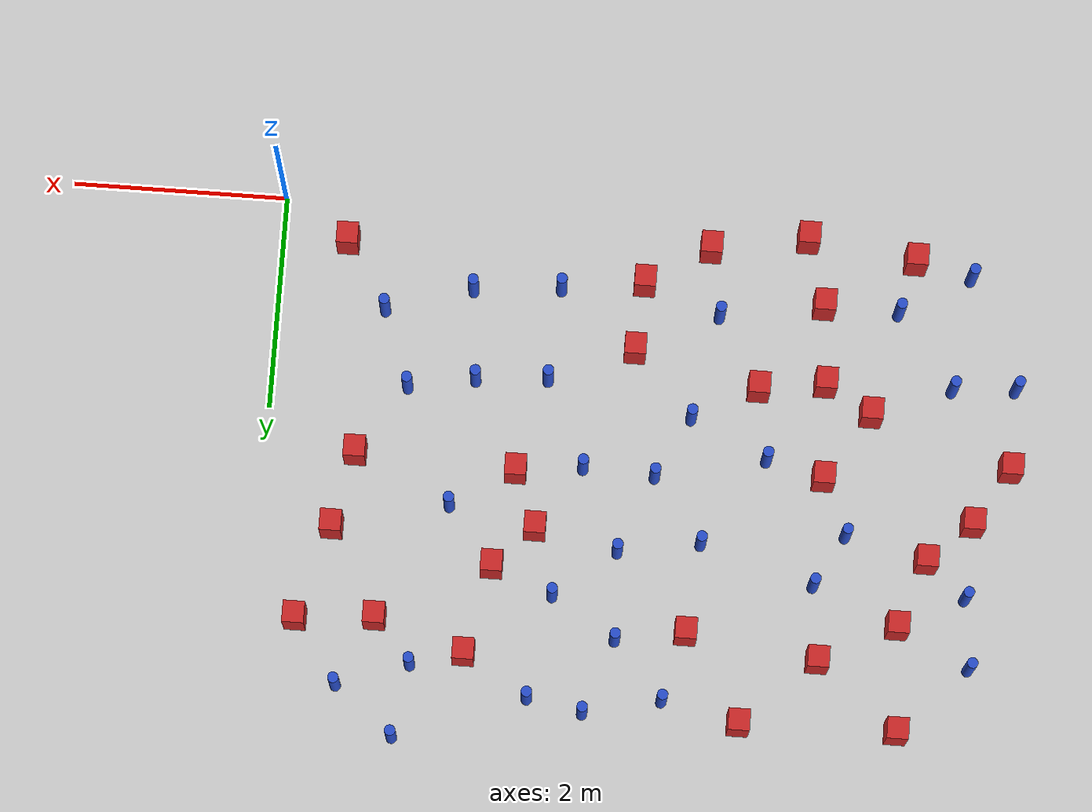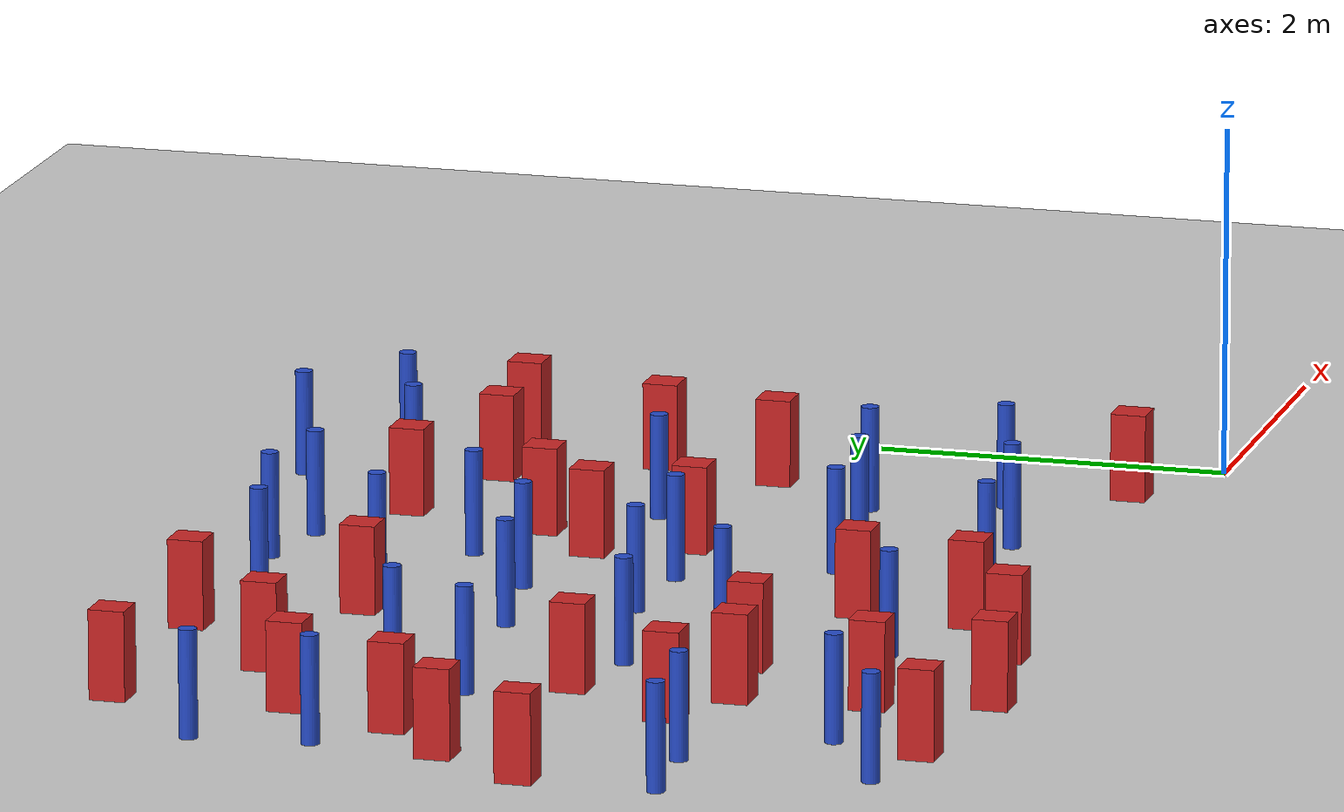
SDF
<sdf version="1.6">
 <world name="default">
  <model name="ground_plane">
   <static>1</static>
   <link name="link">
    <collision name="collision">
     <geometry><plane><normal>0 0 1</normal><size>100 100</size></plane></geometry>
     <surface><friction><ode><mu>100</mu><mu2>50</mu2></ode></friction></surface>
    </collision>
    <visual name="visual">
     <cast_shadows>0</cast_shadows>
     <geometry><plane><normal>0 0 1</normal><size>100 100</size></plane></geometry>
     <material>
      <ambient>1.0 1.0 1.0 1.0</ambient>
      <diffuse>0.8 0.8 0.8 1.0</diffuse>
      <specular>0.01 0.01 0.01 1.000000</specular>
     </material>
    </visual>
   </link>
  </model>
  <model name="square_post_obstacle8">
   <static>true</static>
   <pose>-2.33978747263 2.45094389933 1.91545236811e-07 -7.35059704564e-06 1.12565212e-07 2.39332434364e-05</pose>
   <link name="link">
    <pose>0 0 0.25 0 -0 0</pose>
    <inertial>
     <mass>100</mass>
     <inertia>
      <ixx>0.166667</ixx>
      <ixy>0</ixy>
      <ixz>0</ixz>
      <iyy>0.166667</iyy>
      <iyz>0</iyz>
      <izz>0.166667</izz>
     </inertia>
    </inertial>
    <collision name="collision"><geometry><box><size>.2 .2 .5</size></box></geometry></collision>
    <visual name="visual">
     <geometry><box><size>.2 .2 .5</size></box></geometry>
     <material>
      <script><name>Gazebo/Red</name><uri>file://media/materials/scripts/gazebo.material</uri></script>
     </material>
    </visual>
   </link>
  </model>
  <model name="square_post_obstacle15">
   <static>true</static>
   <pose>-3.41333469753 0.588921729999 1.91545236811e-07 -7.35059704564e-06 1.12565212e-07 2.39332434364e-05</pose>
   <link name="link">
    <pose>0 0 0.25 0 -0 0</pose>
    <inertial>
     <mass>100</mass>
     <inertia>
      <ixx>0.166667</ixx>
      <ixy>0</ixy>
      <ixz>0</ixz>
      <iyy>0.166667</iyy>
      <iyz>0</iyz>
      <izz>0.166667</izz>
     </inertia>
    </inertial>
    <collision name="collision"><geometry><box><size>.2 .2 .5</size></box></geometry></collision>
    <visual name="visual">
     <geometry><box><size>.2 .2 .5</size></box></geometry>
     <material>
      <script><name>Gazebo/Red</name><uri>file://media/materials/scripts/gazebo.material</uri></script>
     </material>
    </visual>
   </link>
  </model>
  <model name="pole_obstacle28">
   <static>true</static>
   <pose>-3.11094032774 4.66303526766 7.38925637345e-09 -8.47170692794e-08 1.24976764468e-08 -1.7451309304e-07</pose>
   <link name="link">
    <pose>0 0 0.3 0 -0 0</pose>
    <inertial>
     <mass>1</mass>
     <inertia><ixx>0.145833</ixx><ixy>0</ixy><ixz>0</ixz><iyy>0.145833</iyy><iyz>0</iyz><izz>0.125</izz></inertia>
    </inertial>
    <collision name="collision">
     <geometry><cylinder><radius>0.05</radius><length>.6</length></cylinder></geometry>
    </collision>
    <visual name="visual">
     <geometry><cylinder><radius>0.05</radius><length>.6</length></cylinder></geometry>
     <material>
      <script><name>Gazebo/Blue</name><uri>file://media/materials/scripts/gazebo.material</uri></script>
     </material>
    </visual>
   </link>
  </model>
  <model name="pole_obstacle29">
   <static>true</static>
   <pose>-6.45218036734 0.327798949229 7.38925637345e-09 -8.47170692798e-08 1.24976765003e-08 -1.7451309302e-07</pose>
   <link name="link">
    <pose>0 0 0.3 0 -0 0</pose>
    <inertial>
     <mass>1</mass>
     <inertia><ixx>0.145833</ixx><ixy>0</ixy><ixz>0</ixz><iyy>0.145833</iyy><iyz>0</iyz><izz>0.125</izz></inertia>
    </inertial>
    <collision name="collision">
     <geometry><cylinder><radius>0.05</radius><length>.6</length></cylinder></geometry>
    </collision>
    <visual name="visual">
     <geometry><cylinder><radius>0.05</radius><length>.6</length></cylinder></geometry>
     <material>
      <script><name>Gazebo/Blue</name><uri>file://media/materials/scripts/gazebo.material</uri></script>
     </material>
    </visual>
   </link>
  </model>
  <model name="pole_obstacle30">
   <static>true</static>
   <pose>-6.63015865188 4.00339270121 7.38925637345e-09 -8.47170692797e-08 1.24976764805e-08 -1.74513093031e-07</pose>
   <link name="link">
    <pose>0 0 0.3 0 -0 0</pose>
    <inertial>
     <mass>1</mass>
     <inertia><ixx>0.145833</ixx><ixy>0</ixy><ixz>0</ixz><iyy>0.145833</iyy><iyz>0</iyz><izz>0.125</izz></inertia>
    </inertial>
    <collision name="collision">
     <geometry><cylinder><radius>0.05</radius><length>.6</length></cylinder></geometry>
    </collision>
    <visual name="visual">
     <geometry><cylinder><radius>0.05</radius><length>.6</length></cylinder></geometry>
     <material>
      <script><name>Gazebo/Blue</name><uri>file://media/materials/scripts/gazebo.material</uri></script>
     </material>
    </visual>
   </link>
  </model>
  <model name="square_post_obstacle22">
   <static>true</static>
   <pose>-0.620099074523 0.383778194402 1.91545236811e-07 -7.35059704564e-06 1.12565212e-07 2.39332434364e-05</pose>
   <link name="link">
    <pose>0 0 0.25 0 -0 0</pose>
    <inertial>
     <mass>100</mass>
     <inertia>
      <ixx>0.166667</ixx>
      <ixy>0</ixy>
      <ixz>0</ixz>
      <iyy>0.166667</iyy>
      <iyz>0</iyz>
      <izz>0.166667</izz>
     </inertia>
    </inertial>
    <collision name="collision"><geometry><box><size>.2 .2 .5</size></box></geometry></collision>
    <visual name="visual">
     <geometry><box><size>.2 .2 .5</size></box></geometry>
     <material>
      <script><name>Gazebo/Red</name><uri>file://media/materials/scripts/gazebo.material</uri></script>
     </material>
    </visual>
   </link>
  </model>
  <model name="square_post_obstacle23">
   <static>true</static>
   <pose>-5.994970781 4.63290797515 1.91545236811e-07 -7.35059704564e-06 1.12565212e-07 2.39332434364e-05</pose>
   <link name="link">
    <pose>0 0 0.25 0 -0 0</pose>
    <inertial>
     <mass>100</mass>
     <inertia>
      <ixx>0.166667</ixx>
      <ixy>0</ixy>
      <ixz>0</ixz>
      <iyy>0.166667</iyy>
      <iyz>0</iyz>
      <izz>0.166667</izz>
     </inertia>
    </inertial>
    <collision name="collision"><geometry><box><size>.2 .2 .5</size></box></geometry></collision>
    <visual name="visual">
     <geometry><box><size>.2 .2 .5</size></box></geometry>
     <material>
      <script><name>Gazebo/Red</name><uri>file://media/materials/scripts/gazebo.material</uri></script>
     </material>
    </visual>
   </link>
  </model>
  <model name="square_post_obstacle25">
   <static>true</static>
   <pose>-4.00942511776 3.85305201055 1.91545236811e-07 -7.35059704564e-06 1.12565212e-07 2.39332434364e-05</pose>
   <link name="link">
    <pose>0 0 0.25 0 -0 0</pose>
    <inertial>
     <mass>100</mass>
     <inertia>
      <ixx>0.166667</ixx>
      <ixy>0</ixy>
      <ixz>0</ixz>
      <iyy>0.166667</iyy>
      <iyz>0</iyz>
      <izz>0.166667</izz>
     </inertia>
    </inertial>
    <collision name="collision"><geometry><box><size>.2 .2 .5</size></box></geometry></collision>
    <visual name="visual">
     <geometry><box><size>.2 .2 .5</size></box></geometry>
     <material>
      <script><name>Gazebo/Red</name><uri>file://media/materials/scripts/gazebo.material</uri></script>
     </material>
    </visual>
   </link>
  </model>
  <model name="pole_obstacle32">
   <static>true</static>
   <pose>-2.95998825719 2.37895637743 7.38925637345e-09 -8.47170692798e-08 1.24976764939e-08 -1.74513093025e-07</pose>
   <link name="link">
    <pose>0 0 0.3 0 -0 0</pose>
    <inertial>
     <mass>1</mass>
     <inertia><ixx>0.145833</ixx><ixy>0</ixy><ixz>0</ixz><iyy>0.145833</iyy><iyz>0</iyz><izz>0.125</izz></inertia>
    </inertial>
    <collision name="collision">
     <geometry><cylinder><radius>0.05</radius><length>.6</length></cylinder></geometry>
    </collision>
    <visual name="visual">
     <geometry><cylinder><radius>0.05</radius><length>.6</length></cylinder></geometry>
     <material>
      <script><name>Gazebo/Blue</name><uri>file://media/materials/scripts/gazebo.material</uri></script>
     </material>
    </visual>
   </link>
  </model>
  <model name="square_post_obstacle37">
   <static>true</static>
   <pose>-0.680453878484 3.09300651212 1.91545236811e-07 -7.35059704564e-06 1.12565212e-07 2.39332434364e-05</pose>
   <link name="link">
    <pose>0 0 0.25 0 -0 0</pose>
    <inertial>
     <mass>100</mass>
     <inertia>
      <ixx>0.166667</ixx>
      <ixy>0</ixy>
      <ixz>0</ixz>
      <iyy>0.166667</iyy>
      <iyz>0</iyz>
      <izz>0.166667</izz>
     </inertia>
    </inertial>
    <collision name="collision"><geometry><box><size>.2 .2 .5</size></box></geometry></collision>
    <visual name="visual">
     <geometry><box><size>.2 .2 .5</size></box></geometry>
     <material>
      <script><name>Gazebo/Red</name><uri>file://media/materials/scripts/gazebo.material</uri></script>
     </material>
    </visual>
   </link>
  </model>
  <model name="pole_obstacle53">
   <static>true</static>
   <pose>-1.75028931363 2.81899844035 7.38925637345e-09 -8.47170692799e-08 1.24976765053e-08 -1.74513093017e-07</pose>
   <link name="link">
    <pose>0 0 0.3 0 -0 0</pose>
    <inertial>
     <mass>1</mass>
     <inertia><ixx>0.145833</ixx><ixy>0</ixy><ixz>0</ixz><iyy>0.145833</iyy><iyz>0</iyz><izz>0.125</izz></inertia>
    </inertial>
    <collision name="collision">
     <geometry><cylinder><radius>0.05</radius><length>.6</length></cylinder></geometry>
    </collision>
    <visual name="visual">
     <geometry><cylinder><radius>0.05</radius><length>.6</length></cylinder></geometry>
     <material>
      <script><name>Gazebo/Blue</name><uri>file://media/materials/scripts/gazebo.material</uri></script>
     </material>
    </visual>
   </link>
  </model>
  <model name="pole_obstacle55">
   <static>true</static>
   <pose>-5.1566972211 3.32908339956 7.38925637345e-09 -8.47170692798e-08 1.24976764937e-08 -1.74513093023e-07</pose>
   <link name="link">
    <pose>0 0 0.3 0 -0 0</pose>
    <inertial>
     <mass>1</mass>
     <inertia><ixx>0.145833</ixx><ixy>0</ixy><ixz>0</ixz><iyy>0.145833</iyy><iyz>0</iyz><izz>0.125</izz></inertia>
    </inertial>
    <collision name="collision">
     <geometry><cylinder><radius>0.05</radius><length>.6</length></cylinder></geometry>
    </collision>
    <visual name="visual">
     <geometry><cylinder><radius>0.05</radius><length>.6</length></cylinder></geometry>
     <material>
      <script><name>Gazebo/Blue</name><uri>file://media/materials/scripts/gazebo.material</uri></script>
     </material>
    </visual>
   </link>
  </model>
  <model name="pole_obstacle58">
   <static>true</static>
   <pose>-6.33474568096 1.4004835811 7.38925637345e-09 -8.471706928e-08 1.24976765134e-08 -1.74513093015e-07</pose>
   <link name="link">
    <pose>0 0 0.3 0 -0 0</pose>
    <inertial>
     <mass>1</mass>
     <inertia><ixx>0.145833</ixx><ixy>0</ixy><ixz>0</ixz><iyy>0.145833</iyy><iyz>0</iyz><izz>0.125</izz></inertia>
    </inertial>
    <collision name="collision">
     <geometry><cylinder><radius>0.05</radius><length>.6</length></cylinder></geometry>
    </collision>
    <visual name="visual">
     <geometry><cylinder><radius>0.05</radius><length>.6</length></cylinder></geometry>
     <material>
      <script><name>Gazebo/Blue</name><uri>file://media/materials/scripts/gazebo.material</uri></script>
     </material>
    </visual>
   </link>
  </model>
  <model name="square_post_obstacle45">
   <static>true</static>
   <pose>-4.53478364354 1.51665164048 1.91545236811e-07 -7.35059704564e-06 1.12565212e-07 2.39332434364e-05</pose>
   <link name="link">
    <pose>0 0 0.25 0 -0 0</pose>
    <inertial>
     <mass>100</mass>
     <inertia>
      <ixx>0.166667</ixx>
      <ixy>0</ixy>
      <ixz>0</ixz>
      <iyy>0.166667</iyy>
      <iyz>0</iyz>
      <izz>0.166667</izz>
     </inertia>
    </inertial>
    <collision name="collision"><geometry><box><size>.2 .2 .5</size></box></geometry></collision>
    <visual name="visual">
     <geometry><box><size>.2 .2 .5</size></box></geometry>
     <material>
      <script><name>Gazebo/Red</name><uri>file://media/materials/scripts/gazebo.material</uri></script>
     </material>
    </visual>
   </link>
  </model>
  <model name="square_post_obstacle60">
   <static>true</static>
   <pose>-0.844206883528 2.38499457655 1.91545236811e-07 -7.35059704564e-06 1.12565212e-07 2.39332434364e-05</pose>
   <link name="link">
    <pose>0 0 0.25 0 -0 0</pose>
    <inertial>
     <mass>100</mass>
     <inertia>
      <ixx>0.166667</ixx>
      <ixy>0</ixy>
      <ixz>0</ixz>
      <iyy>0.166667</iyy>
      <iyz>0</iyz>
      <izz>0.166667</izz>
     </inertia>
    </inertial>
    <collision name="collision"><geometry><box><size>.2 .2 .5</size></box></geometry></collision>
    <visual name="visual">
     <geometry><box><size>.2 .2 .5</size></box></geometry>
     <material>
      <script><name>Gazebo/Red</name><uri>file://media/materials/scripts/gazebo.material</uri></script>
     </material>
    </visual>
   </link>
  </model>
  <model name="pole_obstacle78">
   <static>true</static>
   <pose>-1.38136382829 5.00737316137 7.38925637345e-09 -8.47170692799e-08 1.24976765033e-08 -1.74513093018e-07</pose>
   <link name="link">
    <pose>0 0 0.3 0 -0 0</pose>
    <inertial>
     <mass>1</mass>
     <inertia><ixx>0.145833</ixx><ixy>0</ixy><ixz>0</ixz><iyy>0.145833</iyy><iyz>0</iyz><izz>0.125</izz></inertia>
    </inertial>
    <collision name="collision">
     <geometry><cylinder><radius>0.05</radius><length>.6</length></cylinder></geometry>
    </collision>
    <visual name="visual">
     <geometry><cylinder><radius>0.05</radius><length>.6</length></cylinder></geometry>
     <material>
      <script><name>Gazebo/Blue</name><uri>file://media/materials/scripts/gazebo.material</uri></script>
     </material>
    </visual>
   </link>
  </model>
  <model name="pole_obstacle80">
   <static>true</static>
   <pose>-3.62786413242 2.41393067678 7.38925637345e-09 -8.471706928e-08 1.24976765098e-08 -1.74513093016e-07</pose>
   <link name="link">
    <pose>0 0 0.3 0 -0 0</pose>
    <inertial>
     <mass>1</mass>
     <inertia><ixx>0.145833</ixx><ixy>0</ixy><ixz>0</ixz><iyy>0.145833</iyy><iyz>0</iyz><izz>0.125</izz></inertia>
    </inertial>
    <collision name="collision">
     <geometry><cylinder><radius>0.05</radius><length>.6</length></cylinder></geometry>
    </collision>
    <visual name="visual">
     <geometry><cylinder><radius>0.05</radius><length>.6</length></cylinder></geometry>
     <material>
      <script><name>Gazebo/Blue</name><uri>file://media/materials/scripts/gazebo.material</uri></script>
     </material>
    </visual>
   </link>
  </model>
  <model name="square_post_obstacle69">
   <static>true</static>
   <pose>-0.410595506703 3.96939497935 1.91545236811e-07 -7.35059704564e-06 1.12565212e-07 2.39332434364e-05</pose>
   <link name="link">
    <pose>0 0 0.25 0 -0 0</pose>
    <inertial>
     <mass>100</mass>
     <inertia>
      <ixx>0.166667</ixx>
      <ixy>0</ixy>
      <ixz>0</ixz>
      <iyy>0.166667</iyy>
      <iyz>0</iyz>
      <izz>0.166667</izz>
     </inertia>
    </inertial>
    <collision name="collision"><geometry><box><size>.2 .2 .5</size></box></geometry></collision>
    <visual name="visual">
     <geometry><box><size>.2 .2 .5</size></box></geometry>
     <material>
      <script><name>Gazebo/Red</name><uri>file://media/materials/scripts/gazebo.material</uri></script>
     </material>
    </visual>
   </link>
  </model>
  <model name="pole_obstacle82">
   <static>true</static>
   <pose>-0.827822380422 4.5623789507 7.38925637345e-09 -8.471706928e-08 1.24976765086e-08 -1.74513093015e-07</pose>
   <link name="link">
    <pose>0 0 0.3 0 -0 0</pose>
    <inertial>
     <mass>1</mass>
     <inertia><ixx>0.145833</ixx><ixy>0</ixy><ixz>0</ixz><iyy>0.145833</iyy><iyz>0</iyz><izz>0.125</izz></inertia>
    </inertial>
    <collision name="collision">
     <geometry><cylinder><radius>0.05</radius><length>.6</length></cylinder></geometry>
    </collision>
    <visual name="visual">
     <geometry><cylinder><radius>0.05</radius><length>.6</length></cylinder></geometry>
     <material>
      <script><name>Gazebo/Blue</name><uri>file://media/materials/scripts/gazebo.material</uri></script>
     </material>
    </visual>
   </link>
  </model>
  <model name="square_post_obstacle77">
   <static>true</static>
   <pose>-1.14425140568 3.91658641043 1.91545236811e-07 -7.35059704564e-06 1.12565212e-07 2.39332434364e-05</pose>
   <link name="link">
    <pose>0 0 0.25 0 -0 0</pose>
    <inertial>
     <mass>100</mass>
     <inertia>
      <ixx>0.166667</ixx>
      <ixy>0</ixy>
      <ixz>0</ixz>
      <iyy>0.166667</iyy>
      <iyz>0</iyz>
      <izz>0.166667</izz>
     </inertia>
    </inertial>
    <collision name="collision"><geometry><box><size>.2 .2 .5</size></box></geometry></collision>
    <visual name="visual">
     <geometry><box><size>.2 .2 .5</size></box></geometry>
     <material>
      <script><name>Gazebo/Red</name><uri>file://media/materials/scripts/gazebo.material</uri></script>
     </material>
    </visual>
   </link>
  </model>
  <model name="square_post_obstacle82">
   <static>true</static>
   <pose>-5.09588993658 0.690518674509 1.91545236811e-07 -7.35059704564e-06 1.12565212e-07 2.39332434364e-05</pose>
   <link name="link">
    <pose>0 0 0.25 0 -0 0</pose>
    <inertial>
     <mass>100</mass>
     <inertia>
      <ixx>0.166667</ixx>
      <ixy>0</ixy>
      <ixz>0</ixz>
      <iyy>0.166667</iyy>
      <iyz>0</iyz>
      <izz>0.166667</izz>
     </inertia>
    </inertial>
    <collision name="collision"><geometry><box><size>.2 .2 .5</size></box></geometry></collision>
    <visual name="visual">
     <geometry><box><size>.2 .2 .5</size></box></geometry>
     <material>
      <script><name>Gazebo/Red</name><uri>file://media/materials/scripts/gazebo.material</uri></script>
     </material>
    </visual>
   </link>
  </model>
  <model name="pole_obstacle93">
   <static>true</static>
   <pose>-1.27901055153 1.728733593 7.38925637345e-09 -8.471706928e-08 1.24976765079e-08 -1.74513093017e-07</pose>
   <link name="link">
    <pose>0 0 0.3 0 -0 0</pose>
    <inertial>
     <mass>1</mass>
     <inertia><ixx>0.145833</ixx><ixy>0</ixy><ixz>0</ixz><iyy>0.145833</iyy><iyz>0</iyz><izz>0.125</izz></inertia>
    </inertial>
    <collision name="collision">
     <geometry><cylinder><radius>0.05</radius><length>.6</length></cylinder></geometry>
    </collision>
    <visual name="visual">
     <geometry><cylinder><radius>0.05</radius><length>.6</length></cylinder></geometry>
     <material>
      <script><name>Gazebo/Blue</name><uri>file://media/materials/scripts/gazebo.material</uri></script>
     </material>
    </visual>
   </link>
  </model>
  <model name="square_post_obstacle90">
   <static>true</static>
   <pose>-5.15296940357 1.42869639152 1.91545236811e-07 -7.35059704564e-06 1.12565212e-07 2.39332434364e-05</pose>
   <link name="link">
    <pose>0 0 0.25 0 -0 0</pose>
    <inertial>
     <mass>100</mass>
     <inertia>
      <ixx>0.166667</ixx>
      <ixy>0</ixy>
      <ixz>0</ixz>
      <iyy>0.166667</iyy>
      <iyz>0</iyz>
      <izz>0.166667</izz>
     </inertia>
    </inertial>
    <collision name="collision"><geometry><box><size>.2 .2 .5</size></box></geometry></collision>
    <visual name="visual">
     <geometry><box><size>.2 .2 .5</size></box></geometry>
     <material>
      <script><name>Gazebo/Red</name><uri>file://media/materials/scripts/gazebo.material</uri></script>
     </material>
    </visual>
   </link>
  </model>
  <model name="pole_obstacle104">
   <static>true</static>
   <pose>-2.57791465388 1.57006568848 7.38925637345e-09 -8.471706928e-08 1.24976765152e-08 -1.74513093012e-07</pose>
   <link name="link">
    <pose>0 0 0.3 0 -0 0</pose>
    <inertial>
     <mass>1</mass>
     <inertia><ixx>0.145833</ixx><ixy>0</ixy><ixz>0</ixz><iyy>0.145833</iyy><iyz>0</iyz><izz>0.125</izz></inertia>
    </inertial>
    <collision name="collision">
     <geometry><cylinder><radius>0.05</radius><length>.6</length></cylinder></geometry>
    </collision>
    <visual name="visual">
     <geometry><cylinder><radius>0.05</radius><length>.6</length></cylinder></geometry>
     <material>
      <script><name>Gazebo/Blue</name><uri>file://media/materials/scripts/gazebo.material</uri></script>
     </material>
    </visual>
   </link>
  </model>
  <model name="pole_obstacle111">
   <static>true</static>
   <pose>-5.79566953623 0.705536205193 7.38925637345e-09 -8.47170692799e-08 1.24976765038e-08 -1.74513093018e-07</pose>
   <link name="link">
    <pose>0 0 0.3 0 -0 0</pose>
    <inertial>
     <mass>1</mass>
     <inertia><ixx>0.145833</ixx><ixy>0</ixy><ixz>0</ixz><iyy>0.145833</iyy><iyz>0</iyz><izz>0.125</izz></inertia>
    </inertial>
    <collision name="collision">
     <geometry><cylinder><radius>0.05</radius><length>.6</length></cylinder></geometry>
    </collision>
    <visual name="visual">
     <geometry><cylinder><radius>0.05</radius><length>.6</length></cylinder></geometry>
     <material>
      <script><name>Gazebo/Blue</name><uri>file://media/materials/scripts/gazebo.material</uri></script>
     </material>
    </visual>
   </link>
  </model>
  <model name="square_post_obstacle110">
   <static>true</static>
   <pose>-5.18621304127 2.31897797227 1.91545236811e-07 -7.35059704564e-06 1.12565212e-07 2.39332434364e-05</pose>
   <link name="link">
    <pose>0 0 0.25 0 -0 0</pose>
    <inertial>
     <mass>100</mass>
     <inertia>
      <ixx>0.166667</ixx>
      <ixy>0</ixy>
      <ixz>0</ixz>
      <iyy>0.166667</iyy>
      <iyz>0</iyz>
      <izz>0.166667</izz>
     </inertia>
    </inertial>
    <collision name="collision"><geometry><box><size>.2 .2 .5</size></box></geometry></collision>
    <visual name="visual">
     <geometry><box><size>.2 .2 .5</size></box></geometry>
     <material>
      <script><name>Gazebo/Red</name><uri>file://media/materials/scripts/gazebo.material</uri></script>
     </material>
    </visual>
   </link>
  </model>
  <model name="pole_obstacle114">
   <static>true</static>
   <pose>-1.82261623037 0.76684819179 7.38925637345e-09 -8.47170692799e-08 1.24976765075e-08 -1.74513093017e-07</pose>
   <link name="link">
    <pose>0 0 0.3 0 -0 0</pose>
    <inertial>
     <mass>1</mass>
     <inertia><ixx>0.145833</ixx><ixy>0</ixy><ixz>0</ixz><iyy>0.145833</iyy><iyz>0</iyz><izz>0.125</izz></inertia>
    </inertial>
    <collision name="collision">
     <geometry><cylinder><radius>0.05</radius><length>.6</length></cylinder></geometry>
    </collision>
    <visual name="visual">
     <geometry><cylinder><radius>0.05</radius><length>.6</length></cylinder></geometry>
     <material>
      <script><name>Gazebo/Blue</name><uri>file://media/materials/scripts/gazebo.material</uri></script>
     </material>
    </visual>
   </link>
  </model>
  <model name="pole_obstacle116">
   <static>true</static>
   <pose>-6.56308543086 3.35217252368 7.38925637345e-09 -8.47170692798e-08 1.24976764937e-08 -1.74513093023e-07</pose>
   <link name="link">
    <pose>0 0 0.3 0 -0 0</pose>
    <inertial>
     <mass>1</mass>
     <inertia><ixx>0.145833</ixx><ixy>0</ixy><ixz>0</ixz><iyy>0.145833</iyy><iyz>0</iyz><izz>0.125</izz></inertia>
    </inertial>
    <collision name="collision">
     <geometry><cylinder><radius>0.05</radius><length>.6</length></cylinder></geometry>
    </collision>
    <visual name="visual">
     <geometry><cylinder><radius>0.05</radius><length>.6</length></cylinder></geometry>
     <material>
      <script><name>Gazebo/Blue</name><uri>file://media/materials/scripts/gazebo.material</uri></script>
     </material>
    </visual>
   </link>
  </model>
  <model name="pole_obstacle118">
   <static>true</static>
   <pose>-1.90553903615 1.61863445745 7.38925637345e-09 -8.471706928e-08 1.24976765079e-08 -1.74513093017e-07</pose>
   <link name="link">
    <pose>0 0 0.3 0 -0 0</pose>
    <inertial>
     <mass>1</mass>
     <inertia><ixx>0.145833</ixx><ixy>0</ixy><ixz>0</ixz><iyy>0.145833</iyy><iyz>0</iyz><izz>0.125</izz></inertia>
    </inertial>
    <collision name="collision">
     <geometry><cylinder><radius>0.05</radius><length>.6</length></cylinder></geometry>
    </collision>
    <visual name="visual">
     <geometry><cylinder><radius>0.05</radius><length>.6</length></cylinder></geometry>
     <material>
      <script><name>Gazebo/Blue</name><uri>file://media/materials/scripts/gazebo.material</uri></script>
     </material>
    </visual>
   </link>
  </model>
  <model name="square_post_obstacle121">
   <static>true</static>
   <pose>-5.94882767587 3.65777719625 1.91545236811e-07 -7.35059704564e-06 1.12565212e-07 2.39332434364e-05</pose>
   <link name="link">
    <pose>0 0 0.25 0 -0 0</pose>
    <inertial>
     <mass>100</mass>
     <inertia>
      <ixx>0.166667</ixx>
      <ixy>0</ixy>
      <ixz>0</ixz>
      <iyy>0.166667</iyy>
      <iyz>0</iyz>
      <izz>0.166667</izz>
     </inertia>
    </inertial>
    <collision name="collision"><geometry><box><size>.2 .2 .5</size></box></geometry></collision>
    <visual name="visual">
     <geometry><box><size>.2 .2 .5</size></box></geometry>
     <material>
      <script><name>Gazebo/Red</name><uri>file://media/materials/scripts/gazebo.material</uri></script>
     </material>
    </visual>
   </link>
  </model>
  <model name="pole_obstacle128">
   <static>true</static>
   <pose>-3.33074037647 3.1413902827 7.38925637345e-09 -8.47170692798e-08 1.24976764939e-08 -1.74513093025e-07</pose>
   <link name="link">
    <pose>0 0 0.3 0 -0 0</pose>
    <inertial>
     <mass>1</mass>
     <inertia><ixx>0.145833</ixx><ixy>0</ixy><ixz>0</ixz><iyy>0.145833</iyy><iyz>0</iyz><izz>0.125</izz></inertia>
    </inertial>
    <collision name="collision">
     <geometry><cylinder><radius>0.05</radius><length>.6</length></cylinder></geometry>
    </collision>
    <visual name="visual">
     <geometry><cylinder><radius>0.05</radius><length>.6</length></cylinder></geometry>
     <material>
      <script><name>Gazebo/Blue</name><uri>file://media/materials/scripts/gazebo.material</uri></script>
     </material>
    </visual>
   </link>
  </model>
  <model name="pole_obstacle131">
   <static>true</static>
   <pose>-4.65198011732 2.18592005505 7.38925637345e-09 -8.47170692798e-08 1.24976764937e-08 -1.74513093023e-07</pose>
   <link name="link">
    <pose>0 0 0.3 0 -0 0</pose>
    <inertial>
     <mass>1</mass>
     <inertia><ixx>0.145833</ixx><ixy>0</ixy><ixz>0</ixz><iyy>0.145833</iyy><iyz>0</iyz><izz>0.125</izz></inertia>
    </inertial>
    <collision name="collision">
     <geometry><cylinder><radius>0.05</radius><length>.6</length></cylinder></geometry>
    </collision>
    <visual name="visual">
     <geometry><cylinder><radius>0.05</radius><length>.6</length></cylinder></geometry>
     <material>
      <script><name>Gazebo/Blue</name><uri>file://media/materials/scripts/gazebo.material</uri></script>
     </material>
    </visual>
   </link>
  </model>
  <model name="square_post_obstacle127">
   <static>true</static>
   <pose>-2.18422892414 3.35816358822 1.91545236811e-07 -7.35059704564e-06 1.12565212e-07 2.39332434364e-05</pose>
   <link name="link">
    <pose>0 0 0.25 0 -0 0</pose>
    <inertial>
     <mass>100</mass>
     <inertia>
      <ixx>0.166667</ixx>
      <ixy>0</ixy>
      <ixz>0</ixz>
      <iyy>0.166667</iyy>
      <iyz>0</iyz>
      <izz>0.166667</izz>
     </inertia>
    </inertial>
    <collision name="collision"><geometry><box><size>.2 .2 .5</size></box></geometry></collision>
    <visual name="visual">
     <geometry><box><size>.2 .2 .5</size></box></geometry>
     <material>
      <script><name>Gazebo/Red</name><uri>file://media/materials/scripts/gazebo.material</uri></script>
     </material>
    </visual>
   </link>
  </model>
  <model name="square_post_obstacle130">
   <static>true</static>
   <pose>-4.9104704109 0.0658060221546 1.91545236811e-07 -7.35059704564e-06 1.12565212e-07 2.39332434364e-05</pose>
   <link name="link">
    <pose>0 0 0.25 0 -0 0</pose>
    <inertial>
     <mass>100</mass>
     <inertia>
      <ixx>0.166667</ixx>
      <ixy>0</ixy>
      <ixz>0</ixz>
      <iyy>0.166667</iyy>
      <iyz>0</iyz>
      <izz>0.166667</izz>
     </inertia>
    </inertial>
    <collision name="collision"><geometry><box><size>.2 .2 .5</size></box></geometry></collision>
    <visual name="visual">
     <geometry><box><size>.2 .2 .5</size></box></geometry>
     <material>
      <script><name>Gazebo/Red</name><uri>file://media/materials/scripts/gazebo.material</uri></script>
     </material>
    </visual>
   </link>
  </model>
  <model name="square_post_obstacle131">
   <static>true</static>
   <pose>-1.98611464895 4.19078153891 1.91545236811e-07 -7.35059704564e-06 1.12565212e-07 2.39332434364e-05</pose>
   <link name="link">
    <pose>0 0 0.25 0 -0 0</pose>
    <inertial>
     <mass>100</mass>
     <inertia>
      <ixx>0.166667</ixx>
      <ixy>0</ixy>
      <ixz>0</ixz>
      <iyy>0.166667</iyy>
      <iyz>0</iyz>
      <izz>0.166667</izz>
     </inertia>
    </inertial>
    <collision name="collision"><geometry><box><size>.2 .2 .5</size></box></geometry></collision>
    <visual name="visual">
     <geometry><box><size>.2 .2 .5</size></box></geometry>
     <material>
      <script><name>Gazebo/Red</name><uri>file://media/materials/scripts/gazebo.material</uri></script>
     </material>
    </visual>
   </link>
  </model>
  <model name="pole_obstacle139">
   <static>true</static>
   <pose>-2.64179179855 0.698819181721 7.38925637345e-09 -8.471706928e-08 1.24976765177e-08 -1.74513093012e-07</pose>
   <link name="link">
    <pose>0 0 0.3 0 -0 0</pose>
    <inertial>
     <mass>1</mass>
     <inertia><ixx>0.145833</ixx><ixy>0</ixy><ixz>0</ixz><iyy>0.145833</iyy><iyz>0</iyz><izz>0.125</izz></inertia>
    </inertial>
    <collision name="collision">
     <geometry><cylinder><radius>0.05</radius><length>.6</length></cylinder></geometry>
    </collision>
    <visual name="visual">
     <geometry><cylinder><radius>0.05</radius><length>.6</length></cylinder></geometry>
     <material>
      <script><name>Gazebo/Blue</name><uri>file://media/materials/scripts/gazebo.material</uri></script>
     </material>
    </visual>
   </link>
  </model>
  <model name="square_post_obstacle137">
   <static>true</static>
   <pose>-6.58857665248 2.64833133731 1.91545236811e-07 -7.35059704564e-06 1.12565212e-07 2.39332434364e-05</pose>
   <link name="link">
    <pose>0 0 0.25 0 -0 0</pose>
    <inertial>
     <mass>100</mass>
     <inertia>
      <ixx>0.166667</ixx>
      <ixy>0</ixy>
      <ixz>0</ixz>
      <iyy>0.166667</iyy>
      <iyz>0</iyz>
      <izz>0.166667</izz>
     </inertia>
    </inertial>
    <collision name="collision"><geometry><box><size>.2 .2 .5</size></box></geometry></collision>
    <visual name="visual">
     <geometry><box><size>.2 .2 .5</size></box></geometry>
     <material>
      <script><name>Gazebo/Red</name><uri>file://media/materials/scripts/gazebo.material</uri></script>
     </material>
    </visual>
   </link>
  </model>
  <model name="pole_obstacle146">
   <static>true</static>
   <pose>-4.09482120883 3.01478834572 7.38925637345e-09 -8.47170692798e-08 1.24976764937e-08 -1.74513093023e-07</pose>
   <link name="link">
    <pose>0 0 0.3 0 -0 0</pose>
    <inertial>
     <mass>1</mass>
     <inertia><ixx>0.145833</ixx><ixy>0</ixy><ixz>0</ixz><iyy>0.145833</iyy><iyz>0</iyz><izz>0.125</izz></inertia>
    </inertial>
    <collision name="collision">
     <geometry><cylinder><radius>0.05</radius><length>.6</length></cylinder></geometry>
    </collision>
    <visual name="visual">
     <geometry><cylinder><radius>0.05</radius><length>.6</length></cylinder></geometry>
     <material>
      <script><name>Gazebo/Blue</name><uri>file://media/materials/scripts/gazebo.material</uri></script>
     </material>
    </visual>
   </link>
  </model>
  <model name="pole_obstacle148">
   <static>true</static>
   <pose>-3.36359717908 3.96652836449 7.38925637345e-09 -8.47170692796e-08 1.24976764799e-08 -1.74513093033e-07</pose>
   <link name="link">
    <pose>0 0 0.3 0 -0 0</pose>
    <inertial>
     <mass>1</mass>
     <inertia><ixx>0.145833</ixx><ixy>0</ixy><ixz>0</ixz><iyy>0.145833</iyy><iyz>0</iyz><izz>0.125</izz></inertia>
    </inertial>
    <collision name="collision">
     <geometry><cylinder><radius>0.05</radius><length>.6</length></cylinder></geometry>
    </collision>
    <visual name="visual">
     <geometry><cylinder><radius>0.05</radius><length>.6</length></cylinder></geometry>
     <material>
      <script><name>Gazebo/Blue</name><uri>file://media/materials/scripts/gazebo.material</uri></script>
     </material>
    </visual>
   </link>
  </model>
  <model name="square_post_obstacle142">
   <static>true</static>
   <pose>-6.17979077827 3.02335153809 1.91545236811e-07 -7.35059704564e-06 1.12565212e-07 2.39332434364e-05</pose>
   <link name="link">
    <pose>0 0 0.25 0 -0 0</pose>
    <inertial>
     <mass>100</mass>
     <inertia>
      <ixx>0.166667</ixx>
      <ixy>0</ixy>
      <ixz>0</ixz>
      <iyy>0.166667</iyy>
      <iyz>0</iyz>
      <izz>0.166667</izz>
     </inertia>
    </inertial>
    <collision name="collision"><geometry><box><size>.2 .2 .5</size></box></geometry></collision>
    <visual name="visual">
     <geometry><box><size>.2 .2 .5</size></box></geometry>
     <material>
      <script><name>Gazebo/Red</name><uri>file://media/materials/scripts/gazebo.material</uri></script>
     </material>
    </visual>
   </link>
  </model>
  <model name="square_post_obstacle143">
   <static>true</static>
   <pose>-4.54613400608 4.66030063636 1.91545236811e-07 -7.35059704564e-06 1.12565212e-07 2.39332434364e-05</pose>
   <link name="link">
    <pose>0 0 0.25 0 -0 0</pose>
    <inertial>
     <mass>100</mass>
     <inertia>
      <ixx>0.166667</ixx>
      <ixy>0</ixy>
      <ixz>0</ixz>
      <iyy>0.166667</iyy>
      <iyz>0</iyz>
      <izz>0.166667</izz>
     </inertia>
    </inertial>
    <collision name="collision"><geometry><box><size>.2 .2 .5</size></box></geometry></collision>
    <visual name="visual">
     <geometry><box><size>.2 .2 .5</size></box></geometry>
     <material>
      <script><name>Gazebo/Red</name><uri>file://media/materials/scripts/gazebo.material</uri></script>
     </material>
    </visual>
   </link>
  </model>
  <model name="pole_obstacle154">
   <static>true</static>
   <pose>-5.42445744412 2.84584897891 7.38925637345e-09 -8.47170692798e-08 1.24976764937e-08 -1.74513093023e-07</pose>
   <link name="link">
    <pose>0 0 0.3 0 -0 0</pose>
    <inertial>
     <mass>1</mass>
     <inertia><ixx>0.145833</ixx><ixy>0</ixy><ixz>0</ixz><iyy>0.145833</iyy><iyz>0</iyz><izz>0.125</izz></inertia>
    </inertial>
    <collision name="collision">
     <geometry><cylinder><radius>0.05</radius><length>.6</length></cylinder></geometry>
    </collision>
    <visual name="visual">
     <geometry><cylinder><radius>0.05</radius><length>.6</length></cylinder></geometry>
     <material>
      <script><name>Gazebo/Blue</name><uri>file://media/materials/scripts/gazebo.material</uri></script>
     </material>
    </visual>
   </link>
  </model>
  <model name="square_post_obstacle157">
   <static>true</static>
   <pose>-4.00932753875 0.222665757574 1.91545236811e-07 -7.35059704564e-06 1.12565212e-07 2.39332434364e-05</pose>
   <link name="link">
    <pose>0 0 0.25 0 -0 0</pose>
    <inertial>
     <mass>100</mass>
     <inertia>
      <ixx>0.166667</ixx>
      <ixy>0</ixy>
      <ixz>0</ixz>
      <iyy>0.166667</iyy>
      <iyz>0</iyz>
      <izz>0.166667</izz>
     </inertia>
    </inertial>
    <collision name="collision"><geometry><box><size>.2 .2 .5</size></box></geometry></collision>
    <visual name="visual">
     <geometry><box><size>.2 .2 .5</size></box></geometry>
     <material>
      <script><name>Gazebo/Red</name><uri>file://media/materials/scripts/gazebo.material</uri></script>
     </material>
    </visual>
   </link>
  </model>
  <model name="pole_obstacle166">
   <static>true</static>
   <pose>-2.59456441569 4.562367043 7.38925637345e-09 -8.47170692798e-08 1.24976765033e-08 -1.74513093019e-07</pose>
   <link name="link">
    <pose>0 0 0.3 0 -0 0</pose>
    <inertial>
     <mass>1</mass>
     <inertia><ixx>0.145833</ixx><ixy>0</ixy><ixz>0</ixz><iyy>0.145833</iyy><iyz>0</iyz><izz>0.125</izz></inertia>
    </inertial>
    <collision name="collision">
     <geometry><cylinder><radius>0.05</radius><length>.6</length></cylinder></geometry>
    </collision>
    <visual name="visual">
     <geometry><cylinder><radius>0.05</radius><length>.6</length></cylinder></geometry>
     <material>
      <script><name>Gazebo/Blue</name><uri>file://media/materials/scripts/gazebo.material</uri></script>
     </material>
    </visual>
   </link>
  </model>
  <model name="pole_obstacle167">
   <static>true</static>
   <pose>-3.92993768587 1.83883543617 7.38925637345e-09 -8.47170692796e-08 1.24976764713e-08 -1.74513093037e-07</pose>
   <link name="link">
    <pose>0 0 0.3 0 -0 0</pose>
    <inertial>
     <mass>1</mass>
     <inertia><ixx>0.145833</ixx><ixy>0</ixy><ixz>0</ixz><iyy>0.145833</iyy><iyz>0</iyz><izz>0.125</izz></inertia>
    </inertial>
    <collision name="collision">
     <geometry><cylinder><radius>0.05</radius><length>.6</length></cylinder></geometry>
    </collision>
    <visual name="visual">
     <geometry><cylinder><radius>0.05</radius><length>.6</length></cylinder></geometry>
     <material>
      <script><name>Gazebo/Blue</name><uri>file://media/materials/scripts/gazebo.material</uri></script>
     </material>
    </visual>
   </link>
  </model>
  <model name="pole_obstacle168">
   <static>true</static>
   <pose>-1.49687039897 4.32656863151 7.38925637345e-09 -8.47170692799e-08 1.24976765033e-08 -1.74513093018e-07</pose>
   <link name="link">
    <pose>0 0 0.3 0 -0 0</pose>
    <inertial>
     <mass>1</mass>
     <inertia><ixx>0.145833</ixx><ixy>0</ixy><ixz>0</ixz><iyy>0.145833</iyy><iyz>0</iyz><izz>0.125</izz></inertia>
    </inertial>
    <collision name="collision">
     <geometry><cylinder><radius>0.05</radius><length>.6</length></cylinder></geometry>
    </collision>
    <visual name="visual">
     <geometry><cylinder><radius>0.05</radius><length>.6</length></cylinder></geometry>
     <material>
      <script><name>Gazebo/Blue</name><uri>file://media/materials/scripts/gazebo.material</uri></script>
     </material>
    </visual>
   </link>
  </model>
  <model name="square_post_obstacle168">
   <static>true</static>
   <pose>-5.59120082966 1.68380625413 1.91545236811e-07 -7.35059704564e-06 1.12565212e-07 2.39332434364e-05</pose>
   <link name="link">
    <pose>0 0 0.25 0 -0 0</pose>
    <inertial>
     <mass>100</mass>
     <inertia>
      <ixx>0.166667</ixx>
      <ixy>0</ixy>
      <ixz>0</ixz>
      <iyy>0.166667</iyy>
      <iyz>0</iyz>
      <izz>0.166667</izz>
     </inertia>
    </inertial>
    <collision name="collision"><geometry><box><size>.2 .2 .5</size></box></geometry></collision>
    <visual name="visual">
     <geometry><box><size>.2 .2 .5</size></box></geometry>
     <material>
      <script><name>Gazebo/Red</name><uri>file://media/materials/scripts/gazebo.material</uri></script>
     </material>
    </visual>
   </link>
  </model>
  <model name="square_post_obstacle172">
   <static>true</static>
   <pose>-5.92270998763 0.200878233561 1.91545236811e-07 -7.35059704564e-06 1.12565212e-07 2.39332434364e-05</pose>
   <link name="link">
    <pose>0 0 0.25 0 -0 0</pose>
    <inertial>
     <mass>100</mass>
     <inertia>
      <ixx>0.166667</ixx>
      <ixy>0</ixy>
      <ixz>0</ixz>
      <iyy>0.166667</iyy>
      <iyz>0</iyz>
      <izz>0.166667</izz>
     </inertia>
    </inertial>
    <collision name="collision"><geometry><box><size>.2 .2 .5</size></box></geometry></collision>
    <visual name="visual">
     <geometry><box><size>.2 .2 .5</size></box></geometry>
     <material>
      <script><name>Gazebo/Red</name><uri>file://media/materials/scripts/gazebo.material</uri></script>
     </material>
    </visual>
   </link>
  </model>
  <model name="square_post_obstacle177">
   <static>true</static>
   <pose>-2.55627414765 2.97626790236 1.91545236811e-07 -7.35059704564e-06 1.12565212e-07 2.39332434364e-05</pose>
   <link name="link">
    <pose>0 0 0.25 0 -0 0</pose>
    <inertial>
     <mass>100</mass>
     <inertia>
      <ixx>0.166667</ixx>
      <ixy>0</ixy>
      <ixz>0</ixz>
      <iyy>0.166667</iyy>
      <iyz>0</iyz>
      <izz>0.166667</izz>
     </inertia>
    </inertial>
    <collision name="collision"><geometry><box><size>.2 .2 .5</size></box></geometry></collision>
    <visual name="visual">
     <geometry><box><size>.2 .2 .5</size></box></geometry>
     <material>
      <script><name>Gazebo/Red</name><uri>file://media/materials/scripts/gazebo.material</uri></script>
     </material>
    </visual>
   </link>
  </model>
  <model name="square_post_obstacle178">
   <static>true</static>
   <pose>-6.90986172 2.11099497461 1.91545236811e-07 -7.35059704564e-06 1.12565212e-07 2.39332434364e-05</pose>
   <link name="link">
    <pose>0 0 0.25 0 -0 0</pose>
    <inertial>
     <mass>100</mass>
     <inertia>
      <ixx>0.166667</ixx>
      <ixy>0</ixy>
      <ixz>0</ixz>
      <iyy>0.166667</iyy>
      <iyz>0</iyz>
      <izz>0.166667</izz>
     </inertia>
    </inertial>
    <collision name="collision"><geometry><box><size>.2 .2 .5</size></box></geometry></collision>
    <visual name="visual">
     <geometry><box><size>.2 .2 .5</size></box></geometry>
     <material>
      <script><name>Gazebo/Red</name><uri>file://media/materials/scripts/gazebo.material</uri></script>
     </material>
    </visual>
   </link>
  </model>
  <model name="square_post_obstacle179">
   <static>true</static>
   <pose>-5.23386599695 4.0256424194 1.91545236811e-07 -7.35059704564e-06 1.12565212e-07 2.39332434364e-05</pose>
   <link name="link">
    <pose>0 0 0.25 0 -0 0</pose>
    <inertial>
     <mass>100</mass>
     <inertia>
      <ixx>0.166667</ixx>
      <ixy>0</ixy>
      <ixz>0</ixz>
      <iyy>0.166667</iyy>
      <iyz>0</iyz>
      <izz>0.166667</izz>
     </inertia>
    </inertial>
    <collision name="collision"><geometry><box><size>.2 .2 .5</size></box></geometry></collision>
    <visual name="visual">
     <geometry><box><size>.2 .2 .5</size></box></geometry>
     <material>
      <script><name>Gazebo/Red</name><uri>file://media/materials/scripts/gazebo.material</uri></script>
     </material>
    </visual>
   </link>
  </model>
  <model name="square_post_obstacle204">
   <static>true</static>
   <pose>-3.36514841793 1.23454854222 1.91545236811e-07 -7.35059704564e-06 1.12565212e-07 2.39332434364e-05</pose>
   <link name="link">
    <pose>0 0 0.25 0 -0 0</pose>
    <inertial>
     <mass>100</mass>
     <inertia>
      <ixx>0.166667</ixx>
      <ixy>0</ixy>
      <ixz>0</ixz>
      <iyy>0.166667</iyy>
      <iyz>0</iyz>
      <izz>0.166667</izz>
     </inertia>
    </inertial>
    <collision name="collision"><geometry><box><size>.2 .2 .5</size></box></geometry></collision>
    <visual name="visual">
     <geometry><box><size>.2 .2 .5</size></box></geometry>
     <material>
      <script><name>Gazebo/Red</name><uri>file://media/materials/scripts/gazebo.material</uri></script>
     </material>
    </visual>
   </link>
  </model>
  <model name="pole_obstacle195">
   <static>true</static>
   <pose>-3.83155755823 4.49891769369 7.38925637345e-09 -8.47170692794e-08 1.24976764468e-08 -1.7451309304e-07</pose>
   <link name="link">
    <pose>0 0 0.3 0 -0 0</pose>
    <inertial>
     <mass>1</mass>
     <inertia><ixx>0.145833</ixx><ixy>0</ixy><ixz>0</ixz><iyy>0.145833</iyy><iyz>0</iyz><izz>0.125</izz></inertia>
    </inertial>
    <collision name="collision">
     <geometry><cylinder><radius>0.05</radius><length>.6</length></cylinder></geometry>
    </collision>
    <visual name="visual">
     <geometry><cylinder><radius>0.05</radius><length>.6</length></cylinder></geometry>
     <material>
      <script><name>Gazebo/Blue</name><uri>file://media/materials/scripts/gazebo.material</uri></script>
     </material>
    </visual>
   </link>
  </model>
  <model name="pole_obstacle204">
   <static>true</static>
   <pose>-2.75916999043 3.59415002078 7.38925637345e-09 -8.47170692798e-08 1.24976764939e-08 -1.74513093025e-07</pose>
   <link name="link">
    <pose>0 0 0.3 0 -0 0</pose>
    <inertial>
     <mass>1</mass>
     <inertia><ixx>0.145833</ixx><ixy>0</ixy><ixz>0</ixz><iyy>0.145833</iyy><iyz>0</iyz><izz>0.125</izz></inertia>
    </inertial>
    <collision name="collision">
     <geometry><cylinder><radius>0.05</radius><length>.6</length></cylinder></geometry>
    </collision>
    <visual name="visual">
     <geometry><cylinder><radius>0.05</radius><length>.6</length></cylinder></geometry>
     <material>
      <script><name>Gazebo/Blue</name><uri>file://media/materials/scripts/gazebo.material</uri></script>
     </material>
    </visual>
   </link>
  </model>
  <model name="pole_obstacle211">
   <static>true</static>
   <pose>-6.92305999043 1.35792002078 7.38925637345e-09 -8.471706928e-08 1.24976765134e-08 -1.74513093015e-07</pose>
   <link name="link">
    <pose>0 0 0.3 0 -0 0</pose>
    <inertial>
     <mass>1</mass>
     <inertia><ixx>0.145833</ixx><ixy>0</ixy><ixz>0</ixz><iyy>0.145833</iyy><iyz>0</iyz><izz>0.125</izz></inertia>
    </inertial>
    <collision name="collision">
     <geometry><cylinder><radius>0.05</radius><length>.6</length></cylinder></geometry>
    </collision>
    <visual name="visual">
     <geometry><cylinder><radius>0.05</radius><length>.6</length></cylinder></geometry>
     <material>
      <script><name>Gazebo/Blue</name><uri>file://media/materials/scripts/gazebo.material</uri></script>
     </material>
    </visual>
   </link>
  </model>
  <model name="pole_obstacle222">
   <static>true</static>
   <pose>-1.01449999043 1.01160002078 7.38925637345e-09 -8.47170692799e-08 1.24976765054e-08 -1.74513093017e-07</pose>
   <link name="link">
    <pose>0 0 0.3 0 -0 0</pose>
    <inertial>
     <mass>1</mass>
     <inertia><ixx>0.145833</ixx><ixy>0</ixy><ixz>0</ixz><iyy>0.145833</iyy><iyz>0</iyz><izz>0.125</izz></inertia>
    </inertial>
    <collision name="collision">
     <geometry><cylinder><radius>0.05</radius><length>.6</length></cylinder></geometry>
    </collision>
    <visual name="visual">
     <geometry><cylinder><radius>0.05</radius><length>.6</length></cylinder></geometry>
     <material>
      <script><name>Gazebo/Blue</name><uri>file://media/materials/scripts/gazebo.material</uri></script>
     </material>
    </visual>
   </link>
  </model>
  <model name="pole_obstacle229">
   <static>true</static>
   <pose>-4.13043999043 0.854233020781 7.38925637345e-09 -8.47170692799e-08 1.24976765038e-08 -1.74513093018e-07</pose>
   <link name="link">
    <pose>0 0 0.3 0 -0 0</pose>
    <inertial>
     <mass>1</mass>
     <inertia><ixx>0.145833</ixx><ixy>0</ixy><ixz>0</ixz><iyy>0.145833</iyy><iyz>0</iyz><izz>0.125</izz></inertia>
    </inertial>
    <collision name="collision">
     <geometry><cylinder><radius>0.05</radius><length>.6</length></cylinder></geometry>
    </collision>
    <visual name="visual">
     <geometry><cylinder><radius>0.05</radius><length>.6</length></cylinder></geometry>
     <material>
      <script><name>Gazebo/Blue</name><uri>file://media/materials/scripts/gazebo.material</uri></script>
     </material>
    </visual>
   </link>
  </model>
 </world>
</sdf>
